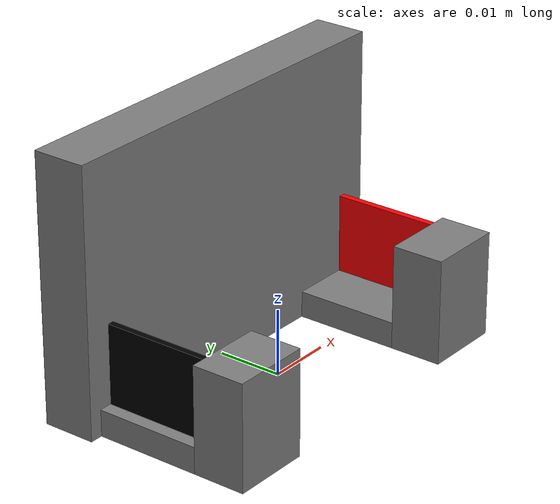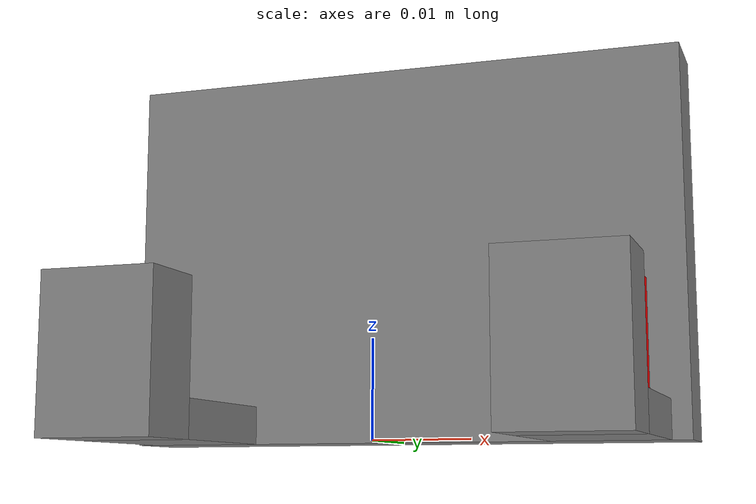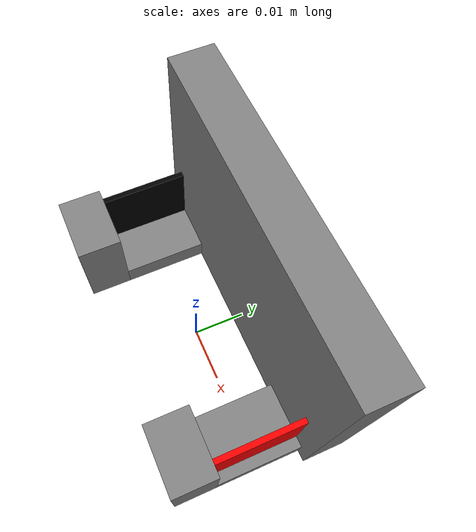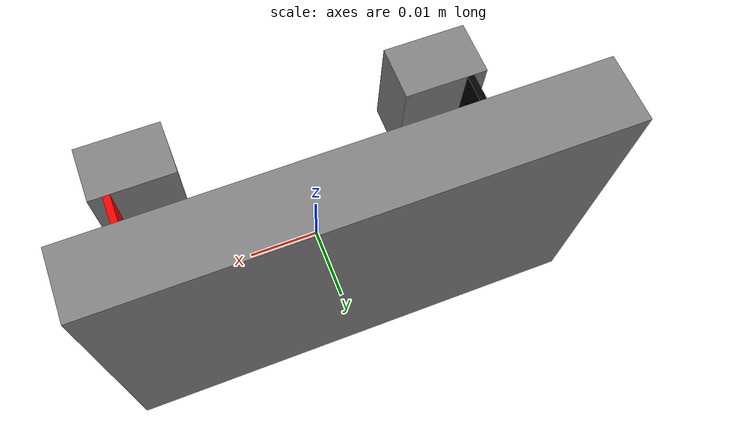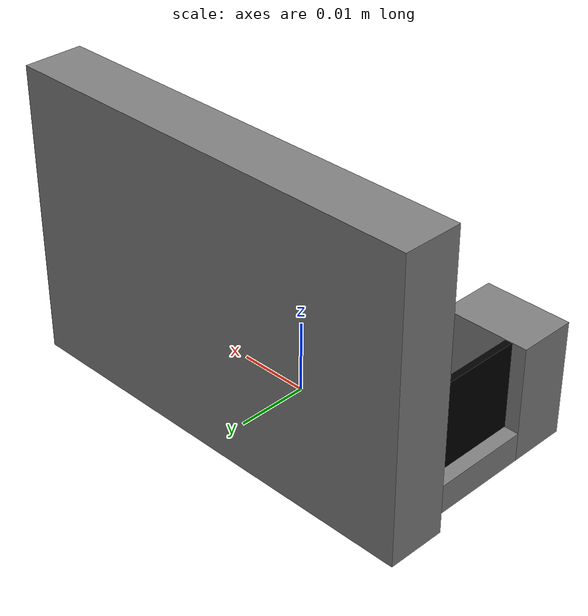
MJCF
<mujoco model="battery_aaa_tray_charger">
    <worldbody>
        <body name="charger_AAA_tray" pos="0 0 0">

            <!-- Back wall -->
            <geom name="back_wall" type="box" pos="0 0.012 0.020" size="0.030 0.004 0.020" rgba="0.5 0.5 0.5 1" mass="0.5" friction="1 0.005 0.0001" condim="4"/>

            <!-- Bottom right -->
            <geom name="bottom_right" type="box" pos="0.022 0 0.002" size="0.006 0.008 0.002" rgba="0.5 0.5 0.5 1" mass="0.5" friction="1 0.005 0.0001" condim="4"/>

            <!-- Right wall -->
            <geom name="right_wall" type="box" pos="0.0255 0 0.010" size="0.0005 0.008 0.006" rgba="1 0 0 1" mass="0.5" friction="1 0.005 0.0001" condim="4"/>

            <!-- Right hook -->
            <geom name="right_hook" type="box" pos="0.022 -0.012 0.008" size="0.006 0.004 0.008" rgba="0.5 0.5 0.5 1" mass="0.5" friction="1 0.005 0.0001" condim="4"/>

            <!-- Bottom left -->
            <geom name="bottom_left" type="box" pos="-0.022 0 0.002" size="0.006 0.008 0.002" rgba="0.5 0.5 0.5 1" mass="0.5" friction="1 0.005 0.0001" condim="4"/>

            <!-- Left wall -->
            <geom name="left_wall" type="box" pos="-0.0255 0 0.010" size="0.0005 0.008 0.006" rgba="0 0 0 1" mass="0.5" friction="1 0.005 0.0001" condim="4"/>

            <!-- Left hook -->
            <geom name="left_hook" type="box" pos="-0.022 -0.012 0.008" size="0.006 0.004 0.008" rgba="0.5 0.5 0.5 1" mass="0.5" friction="1 0.005 0.0001" condim="4"/>

            <!-- Make it one solid object -->
            <joint name="battery_joint" type="free"/>
        </body>
    </worldbody>
</mujoco>
